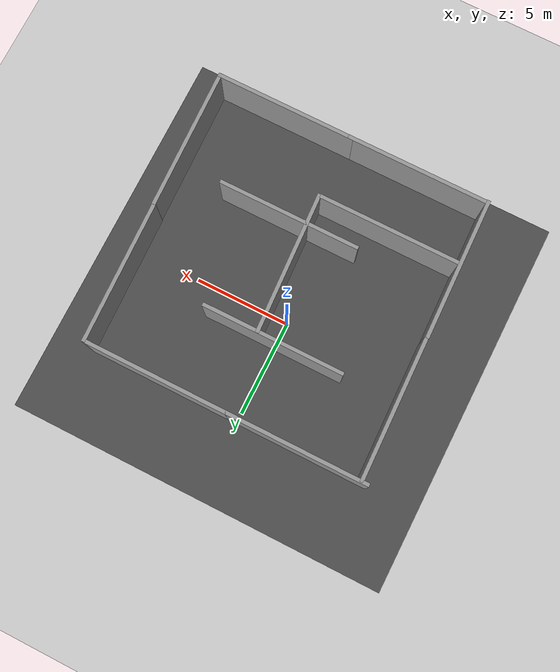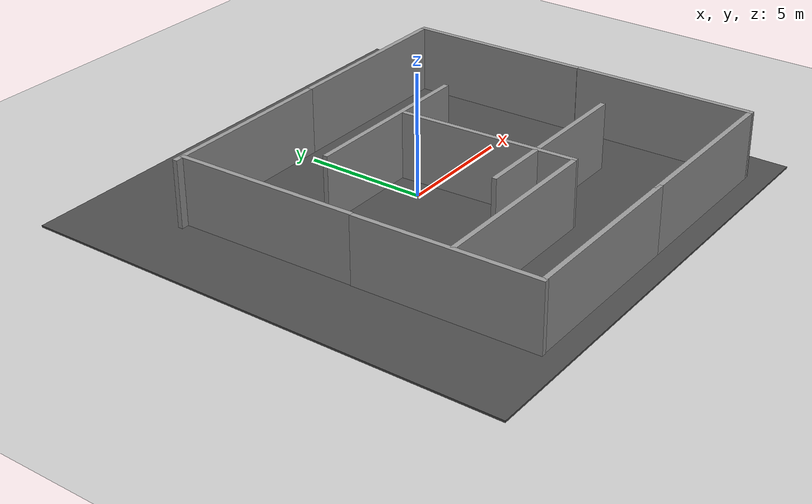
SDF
<sdf version="1.6">
 <world name="default">
  <light name="sun" type="directional">
   <pose>0 0 10 0 -0 0</pose>
   <diffuse>0.8 0.8 0.8 1</diffuse>
   <specular>0.1 0.1 0.1 1</specular>
   <attenuation>
    <range>1000</range>
    <constant>0.9</constant>
    <linear>0.01</linear>
    <quadratic>0.001</quadratic>
   </attenuation>
   <direction>-0.5 0.5 -1</direction>
  </light>
  <model name="ground_plane">
   <static>1</static>
   <link name="link">
    <collision name="collision">
     <geometry><plane><normal>0 0 1</normal><size>100 100</size></plane></geometry>
     <surface><friction><ode><mu>100</mu><mu2>50</mu2></ode></friction></surface>
    </collision>
    <visual name="visual">
     <cast_shadows>0</cast_shadows>
     <geometry><plane><normal>0 0 1</normal><size>100 100</size></plane></geometry>
     <material>
      <script><uri>file://media/materials/scripts/gazebo.material</uri><name>Gazebo/Grey</name></script>
     </material>
    </visual>
   </link>
  </model>
  <gravity>0 0 -9.8</gravity>
  <magnetic_field>6e-06 2.3e-05 -4.2e-05</magnetic_field>
  <atmosphere type="adiabatic"/>
  <physics name="default_physics" default="0" type="ode">
   <max_step_size>0.001</max_step_size>
   <real_time_factor>1</real_time_factor>
   <real_time_update_rate>1000</real_time_update_rate>
  </physics>
  <scene><ambient>0.4 0.4 0.4 1</ambient><background>0.7 0.7 0.7 1</background><shadows>1</shadows></scene>
  <spherical_coordinates>
   <surface_model>EARTH_WGS84</surface_model>
   <latitude_deg>0</latitude_deg>
   <longitude_deg>0</longitude_deg>
   <elevation>0</elevation>
   <heading_deg>0</heading_deg>
  </spherical_coordinates>
  <model name="asphalt_plane">
   <static>1</static>
   <link name="link">
    <collision name="collision"><geometry><box><size>20 20 0.1</size></box></geometry></collision>
    <visual name="visual">
     <cast_shadows>0</cast_shadows>
     <geometry><box><size>20 20 0.1</size></box></geometry>
     <material>
      <script>
       <uri>model://asphalt_plane/materials/scripts</uri>
       <uri>model://asphalt_plane/materials/textures</uri>
       <name>vrc/asphalt</name>
      </script>
     </material>
    </visual>
   </link>
   <pose>0.195558 -0.317074 0 0 -0 0</pose>
  </model>
  <model name="grey_wall">
   <static>1</static>
   <link name="link">
    <pose>0 0 1.4 0 -0 0</pose>
    <collision name="collision"><geometry><box><size>7.5 0.2 2.8</size></box></geometry></collision>
    <visual name="visual">
     <cast_shadows>0</cast_shadows>
     <geometry><box><size>7.5 0.2 2.8</size></box></geometry>
     <material>
      <script>
       <uri>model://grey_wall/materials/scripts</uri>
       <uri>model://grey_wall/materials/textures</uri>
       <name>vrc/grey_wall</name>
      </script>
     </material>
    </visual>
   </link>
   <pose>-2.43393 -9.31573 0 0 -0 0</pose>
  </model>
  <model name="grey_wall_clone">
   <static>1</static>
   <link name="link">
    <pose>0 0 1.4 0 -0 0</pose>
    <collision name="collision"><geometry><box><size>7.5 0.2 2.8</size></box></geometry></collision>
    <visual name="visual">
     <cast_shadows>0</cast_shadows>
     <geometry><box><size>7.5 0.2 2.8</size></box></geometry>
     <material>
      <script>
       <uri>model://grey_wall/materials/scripts</uri>
       <uri>model://grey_wall/materials/textures</uri>
       <name>vrc/grey_wall</name>
      </script>
     </material>
    </visual>
   </link>
   <pose>4.78528 -9.31477 0 0 -0 0</pose>
  </model>
  <model name="grey_wall_clone_clone_0">
   <static>1</static>
   <link name="link">
    <pose>0 0 1.4 0 -0 0</pose>
    <collision name="collision"><geometry><box><size>7.5 0.2 2.8</size></box></geometry></collision>
    <visual name="visual">
     <cast_shadows>0</cast_shadows>
     <geometry><box><size>7.5 0.2 2.8</size></box></geometry>
     <material>
      <script>
       <uri>model://grey_wall/materials/scripts</uri>
       <uri>model://grey_wall/materials/textures</uri>
       <name>vrc/grey_wall</name>
      </script>
     </material>
    </visual>
   </link>
   <pose>-2.55341 -5.95498 0 0 -0 0</pose>
  </model>
  <model name="grey_wall_clone_clone_clone">
   <static>1</static>
   <link name="link">
    <pose>0 0 1.4 0 -0 0</pose>
    <collision name="collision"><geometry><box><size>7.5 0.2 2.8</size></box></geometry></collision>
    <visual name="visual">
     <cast_shadows>0</cast_shadows>
     <geometry><box><size>7.5 0.2 2.8</size></box></geometry>
     <material>
      <script>
       <uri>model://grey_wall/materials/scripts</uri>
       <uri>model://grey_wall/materials/textures</uri>
       <name>vrc/grey_wall</name>
      </script>
     </material>
    </visual>
   </link>
   <pose>1.0605 -2.29239 0 0 -0 1.62176</pose>
  </model>
  <model name="grey_wall_clone_clone_clone_0">
   <static>1</static>
   <link name="link">
    <pose>0 0 1.4 0 -0 0</pose>
    <collision name="collision"><geometry><box><size>7.5 0.2 2.8</size></box></geometry></collision>
    <visual name="visual">
     <cast_shadows>0</cast_shadows>
     <geometry><box><size>7.5 0.2 2.8</size></box></geometry>
     <material>
      <script>
       <uri>model://grey_wall/materials/scripts</uri>
       <uri>model://grey_wall/materials/textures</uri>
       <name>vrc/grey_wall</name>
      </script>
     </material>
    </visual>
   </link>
   <pose>8.34146 -5.6668 0 0 -0 1.59735</pose>
  </model>
  <model name="grey_wall_clone_clone_clone_1">
   <static>1</static>
   <link name="link">
    <pose>0 0 1.4 0 -0 0</pose>
    <collision name="collision"><geometry><box><size>7.5 0.2 2.8</size></box></geometry></collision>
    <visual name="visual">
     <cast_shadows>0</cast_shadows>
     <geometry><box><size>7.5 0.2 2.8</size></box></geometry>
     <material>
      <script>
       <uri>model://grey_wall/materials/scripts</uri>
       <uri>model://grey_wall/materials/textures</uri>
       <name>vrc/grey_wall</name>
      </script>
     </material>
    </visual>
   </link>
   <pose>8.11794 1.80069 0 0 -0 1.59735</pose>
  </model>
  <model name="grey_wall_clone_clone_1">
   <static>1</static>
   <link name="link">
    <pose>0 0 1.4 0 -0 0</pose>
    <collision name="collision"><geometry><box><size>7.5 0.2 2.8</size></box></geometry></collision>
    <visual name="visual">
     <cast_shadows>0</cast_shadows>
     <geometry><box><size>7.5 0.2 2.8</size></box></geometry>
     <material>
      <script>
       <uri>model://grey_wall/materials/scripts</uri>
       <uri>model://grey_wall/materials/textures</uri>
       <name>vrc/grey_wall</name>
      </script>
     </material>
    </visual>
   </link>
   <pose>4.1861 5.47669 0 0 -0 0</pose>
  </model>
  <model name="grey_wall_clone_clone_2">
   <static>1</static>
   <link name="link">
    <pose>0 0 1.4 0 -0 0</pose>
    <collision name="collision"><geometry><box><size>7.5 0.2 2.8</size></box></geometry></collision>
    <visual name="visual">
     <cast_shadows>0</cast_shadows>
     <geometry><box><size>7.5 0.2 2.8</size></box></geometry>
     <material>
      <script>
       <uri>model://grey_wall/materials/scripts</uri>
       <uri>model://grey_wall/materials/textures</uri>
       <name>vrc/grey_wall</name>
      </script>
     </material>
    </visual>
   </link>
   <pose>-3.27432 5.4734 0 0 -0 0</pose>
  </model>
  <model name="grey_wall_clone_clone_3">
   <static>1</static>
   <link name="link">
    <pose>0 0 1.4 0 -0 0</pose>
    <collision name="collision"><geometry><box><size>7.5 0.2 2.8</size></box></geometry></collision>
    <visual name="visual">
     <cast_shadows>0</cast_shadows>
     <geometry><box><size>7.5 0.2 2.8</size></box></geometry>
     <material>
      <script>
       <uri>model://grey_wall/materials/scripts</uri>
       <uri>model://grey_wall/materials/textures</uri>
       <name>vrc/grey_wall</name>
      </script>
     </material>
    </visual>
   </link>
   <pose>0.065845 1.37364 0 0 -0 0</pose>
  </model>
  <model name="grey_wall_clone_clone_4">
   <static>1</static>
   <link name="link">
    <pose>0 0 1.4 0 -0 0</pose>
    <collision name="collision"><geometry><box><size>7.5 0.2 2.8</size></box></geometry></collision>
    <visual name="visual">
     <cast_shadows>0</cast_shadows>
     <geometry><box><size>7.5 0.2 2.8</size></box></geometry>
     <material>
      <script>
       <uri>model://grey_wall/materials/scripts</uri>
       <uri>model://grey_wall/materials/textures</uri>
       <name>vrc/grey_wall</name>
      </script>
     </material>
    </visual>
   </link>
   <pose>2.13737 -4.42933 0 0 -0 0</pose>
  </model>
  <model name="grey_wall_clone_clone_clone_1_clone">
   <static>1</static>
   <link name="link">
    <pose>0 0 1.4 0 -0 0</pose>
    <collision name="collision"><geometry><box><size>7.5 0.2 2.8</size></box></geometry></collision>
    <visual name="visual">
     <cast_shadows>0</cast_shadows>
     <geometry><box><size>7.5 0.2 2.8</size></box></geometry>
     <material>
      <script>
       <uri>model://grey_wall/materials/scripts</uri>
       <uri>model://grey_wall/materials/textures</uri>
       <name>vrc/grey_wall</name>
      </script>
     </material>
    </visual>
   </link>
   <pose>-6.34258 -5.69391 0 0 -0 1.59735</pose>
  </model>
  <model name="grey_wall_clone_clone_clone_1_clone_0">
   <static>1</static>
   <link name="link">
    <pose>0 0 1.4 0 -0 0</pose>
    <collision name="collision"><geometry><box><size>7.5 0.2 2.8</size></box></geometry></collision>
    <visual name="visual">
     <cast_shadows>0</cast_shadows>
     <geometry><box><size>7.5 0.2 2.8</size></box></geometry>
     <material>
      <script>
       <uri>model://grey_wall/materials/scripts</uri>
       <uri>model://grey_wall/materials/textures</uri>
       <name>vrc/grey_wall</name>
      </script>
     </material>
    </visual>
   </link>
   <pose>-6.52096 1.76442 0 0 -0 1.59735</pose>
  </model>
 </world>
</sdf>
